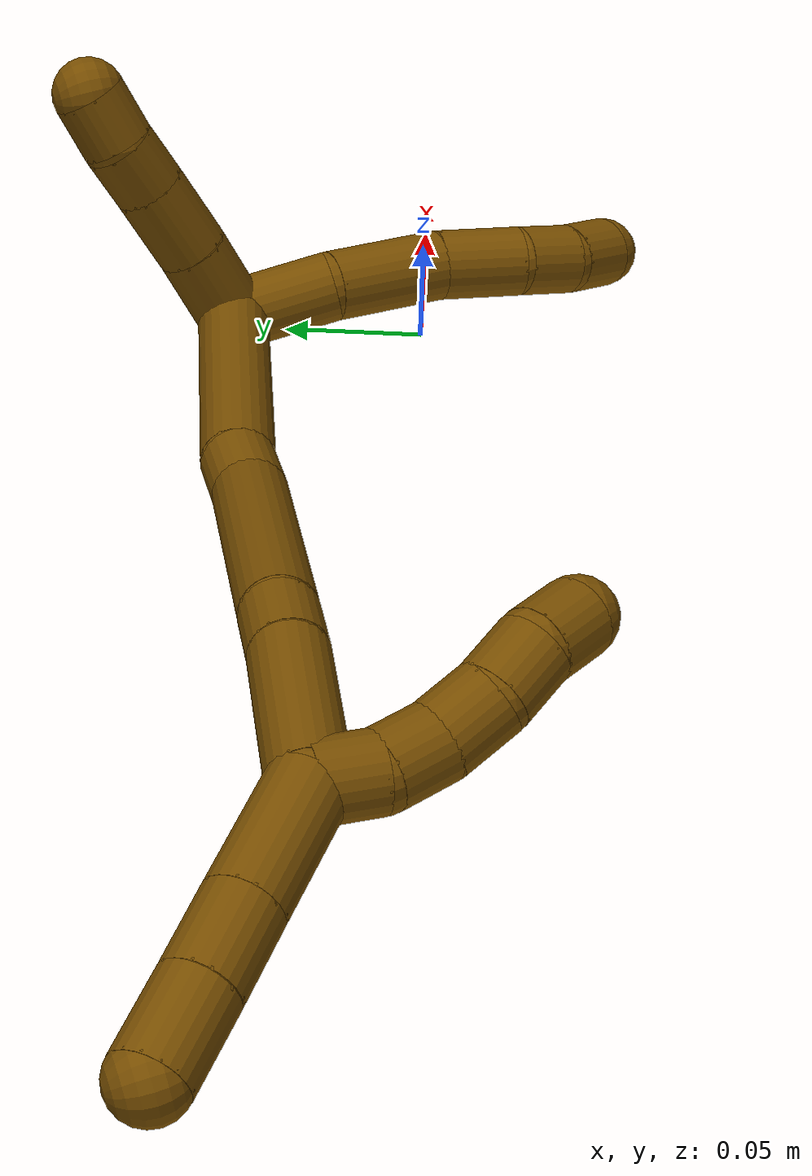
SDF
<sdf version="1.7">
 <world name="default">
  <model name="bin">
   <static>1</static>
   <link name="bottom">
    <collision name="collision-bottom">
     <pose>0 0 -0.01 0 -0 0</pose>
     <geometry><box><size>0.8 0.6 0.02</size></box></geometry>
     <surface>
      <friction><ode><mu>100</mu><mu2>100</mu2></ode></friction>
      <contact><collide_bitmask>65535</collide_bitmask></contact>
     </surface>
    </collision>
   </link>
   <link name="west_wall">
    <collision name="collision-west_wall">
     <pose>-0.41 0 0.1 0 -0 0</pose>
     <geometry><box><size>0.02 0.6 0.2</size></box></geometry>
     <surface>
      <friction><ode><mu>100</mu><mu2>100</mu2></ode></friction>
      <contact><collide_bitmask>65535</collide_bitmask></contact>
     </surface>
    </collision>
   </link>
   <link name="east_wall">
    <collision name="collision-east_wall">
     <pose>0.41 0 0.1 0 -0 0</pose>
     <geometry><box><size>0.02 0.6 0.2</size></box></geometry>
     <surface>
      <friction><ode><mu>100</mu><mu2>100</mu2></ode></friction>
      <contact><collide_bitmask>65535</collide_bitmask></contact>
     </surface>
    </collision>
   </link>
   <link name="south_wall">
    <collision name="collision-south_wall">
     <pose>0 -0.31 0.1 0 -0 0</pose>
     <geometry><box><size>0.8 0.02 0.2</size></box></geometry>
     <surface>
      <friction><ode><mu>100</mu><mu2>100</mu2></ode></friction>
      <contact><collide_bitmask>65535</collide_bitmask></contact>
     </surface>
    </collision>
   </link>
   <link name="north_wall">
    <collision name="collision-north_wall">
     <pose>0 0.31 0.1 0 -0 0</pose>
     <geometry><box><size>0.8 0.02 0.2</size></box></geometry>
     <surface>
      <friction><ode><mu>100</mu><mu2>100</mu2></ode></friction>
      <contact><collide_bitmask>65535</collide_bitmask></contact>
     </surface>
    </collision>
   </link>
  </model>
  <model name="12">
   <static>0</static>
   <link name="12">
    <collision name="collision-cylinder-e_1_2_8">
     <pose>-0.000188 0.0013 0.018205 -0.071304 -0.010299 0.000367</pose>
     <geometry><cylinder><radius>0.0125</radius><length>0.036505</length></cylinder></geometry>
     <surface>
      <friction><ode><mu>1.16</mu><mu2>1.16</mu2><slip1>0</slip1><slip2>0</slip2></ode></friction>
      <contact><ode><kp>1e+06</kp><kd>1</kd><max_vel>0</max_vel><min_depth>0.001</min_depth></ode></contact>
     </surface>
    </collision>
    <visual name="visual-cylinder-e_1_2_8">
     <pose>-0.000188 0.0013 0.018205 -0.071304 -0.010299 0.000367</pose>
     <geometry><cylinder><radius>0.0125</radius><length>0.036505</length></cylinder></geometry>
     <material><ambient>0.466667 0.301961 0 1</ambient></material>
    </visual>
    <collision name="collision-cylinder-e_2_8_9">
     <pose>0.000896 -0.001633 0.056796 0.204749 0.061038 0.006273</pose>
     <geometry><cylinder><radius>0.0125</radius><length>0.041717</length></cylinder></geometry>
     <surface>
      <friction><ode><mu>1.16</mu><mu2>1.16</mu2><slip1>0</slip1><slip2>0</slip2></ode></friction>
      <contact><ode><kp>1e+06</kp><kd>1</kd><max_vel>0</max_vel><min_depth>0.001</min_depth></ode></contact>
     </surface>
    </collision>
    <visual name="visual-cylinder-e_2_8_9">
     <pose>0.000896 -0.001633 0.056796 0.204749 0.061038 0.006273</pose>
     <geometry><cylinder><radius>0.0125</radius><length>0.041717</length></cylinder></geometry>
     <material><ambient>0.466667 0.301961 0 1</ambient></material>
    </visual>
    <collision name="collision-cylinder-e_3_9_10">
     <pose>0.000523 -0.008888 0.092075 0.200222 -0.107843 -0.010843</pose>
     <geometry><cylinder><radius>0.0125</radius><length>0.030573</length></cylinder></geometry>
     <surface>
      <friction><ode><mu>1.16</mu><mu2>1.16</mu2><slip1>0</slip1><slip2>0</slip2></ode></friction>
      <contact><ode><kp>1e+06</kp><kd>1</kd><max_vel>0</max_vel><min_depth>0.001</min_depth></ode></contact>
     </surface>
    </collision>
    <visual name="visual-cylinder-e_3_9_10">
     <pose>0.000523 -0.008888 0.092075 0.200222 -0.107843 -0.010843</pose>
     <geometry><cylinder><radius>0.0125</radius><length>0.030573</length></cylinder></geometry>
     <material><ambient>0.466667 0.301961 0 1</ambient></material>
    </visual>
    <collision name="collision-cylinder-e_4_10_11">
     <pose>-0.000813 -0.015973 0.116692 0.395769 0.029319 0.005879</pose>
     <geometry><cylinder><radius>0.0125</radius><length>0.021083</length></cylinder></geometry>
     <surface>
      <friction><ode><mu>1.16</mu><mu2>1.16</mu2><slip1>0</slip1><slip2>0</slip2></ode></friction>
      <contact><ode><kp>1e+06</kp><kd>1</kd><max_vel>0</max_vel><min_depth>0.001</min_depth></ode></contact>
     </surface>
    </collision>
    <visual name="visual-cylinder-e_4_10_11">
     <pose>-0.000813 -0.015973 0.116692 0.395769 0.029319 0.005879</pose>
     <geometry><cylinder><radius>0.0125</radius><length>0.021083</length></cylinder></geometry>
     <material><ambient>0.466667 0.301961 0 1</ambient></material>
    </visual>
    <collision name="collision-cylinder-e_5_11_6">
     <pose>0.002112 -0.025043 0.134738 0.541586 0.263082 0.073426</pose>
     <geometry><cylinder><radius>0.0125</radius><length>0.020121</length></cylinder></geometry>
     <surface>
      <friction><ode><mu>1.16</mu><mu2>1.16</mu2><slip1>0</slip1><slip2>0</slip2></ode></friction>
      <contact><ode><kp>1e+06</kp><kd>1</kd><max_vel>0</max_vel><min_depth>0.001</min_depth></ode></contact>
     </surface>
    </collision>
    <visual name="visual-cylinder-e_5_11_6">
     <pose>0.002112 -0.025043 0.134738 0.541586 0.263082 0.073426</pose>
     <geometry><cylinder><radius>0.0125</radius><length>0.020121</length></cylinder></geometry>
     <material><ambient>0.466667 0.301961 0 1</ambient></material>
    </visual>
    <collision name="collision-cylinder-e_1_2_12">
     <pose>0.007332 0.012897 -0.005015 -1.94165 0.48722 -0.696986</pose>
     <geometry><cylinder><radius>0.0125</radius><length>0.031321</length></cylinder></geometry>
     <surface>
      <friction><ode><mu>1.16</mu><mu2>1.16</mu2><slip1>0</slip1><slip2>0</slip2></ode></friction>
      <contact><ode><kp>1e+06</kp><kd>1</kd><max_vel>0</max_vel><min_depth>0.001</min_depth></ode></contact>
     </surface>
    </collision>
    <visual name="visual-cylinder-e_1_2_12">
     <pose>0.007332 0.012897 -0.005015 -1.94165 0.48722 -0.696986</pose>
     <geometry><cylinder><radius>0.0125</radius><length>0.031321</length></cylinder></geometry>
     <material><ambient>0.466667 0.301961 0 1</ambient></material>
    </visual>
    <collision name="collision-cylinder-e_2_12_13">
     <pose>0.021591 0.037226 -0.015202 -1.99566 0.504475 -0.760106</pose>
     <geometry><cylinder><radius>0.0125</radius><length>0.028663</length></cylinder></geometry>
     <surface>
      <friction><ode><mu>1.16</mu><mu2>1.16</mu2><slip1>0</slip1><slip2>0</slip2></ode></friction>
      <contact><ode><kp>1e+06</kp><kd>1</kd><max_vel>0</max_vel><min_depth>0.001</min_depth></ode></contact>
     </surface>
    </collision>
    <visual name="visual-cylinder-e_2_12_13">
     <pose>0.021591 0.037226 -0.015202 -1.99566 0.504475 -0.760106</pose>
     <geometry><cylinder><radius>0.0125</radius><length>0.028663</length></cylinder></geometry>
     <material><ambient>0.466667 0.301961 0 1</ambient></material>
    </visual>
    <collision name="collision-cylinder-e_3_13_14">
     <pose>0.033062 0.056753 -0.024107 -2.00292 0.471312 -0.717828</pose>
     <geometry><cylinder><radius>0.0125</radius><length>0.020015</length></cylinder></geometry>
     <surface>
      <friction><ode><mu>1.16</mu><mu2>1.16</mu2><slip1>0</slip1><slip2>0</slip2></ode></friction>
      <contact><ode><kp>1e+06</kp><kd>1</kd><max_vel>0</max_vel><min_depth>0.001</min_depth></ode></contact>
     </surface>
    </collision>
    <visual name="visual-cylinder-e_3_13_14">
     <pose>0.033062 0.056753 -0.024107 -2.00292 0.471312 -0.717828</pose>
     <geometry><cylinder><radius>0.0125</radius><length>0.020015</length></cylinder></geometry>
     <material><ambient>0.466667 0.301961 0 1</ambient></material>
    </visual>
    <collision name="collision-cylinder-e_4_14_5">
     <pose>0.043691 0.07222 -0.030786 -1.95087 0.654131 -0.928655</pose>
     <geometry><cylinder><radius>0.0125</radius><length>0.020001</length></cylinder></geometry>
     <surface>
      <friction><ode><mu>1.16</mu><mu2>1.16</mu2><slip1>0</slip1><slip2>0</slip2></ode></friction>
      <contact><ode><kp>1e+06</kp><kd>1</kd><max_vel>0</max_vel><min_depth>0.001</min_depth></ode></contact>
     </surface>
    </collision>
    <visual name="visual-cylinder-e_4_14_5">
     <pose>0.043691 0.07222 -0.030786 -1.95087 0.654131 -0.928655</pose>
     <geometry><cylinder><radius>0.0125</radius><length>0.020001</length></cylinder></geometry>
     <material><ambient>0.466667 0.301961 0 1</ambient></material>
    </visual>
    <collision name="collision-cylinder-e_1_2_15">
     <pose>-0.043094 0.024241 -0.011492 -2.01348 -1.01398 1.441</pose>
     <geometry><cylinder><radius>0.0125</radius><length>0.101524</length></cylinder></geometry>
     <surface>
      <friction><ode><mu>1.16</mu><mu2>1.16</mu2><slip1>0</slip1><slip2>0</slip2></ode></friction>
      <contact><ode><kp>1e+06</kp><kd>1</kd><max_vel>0</max_vel><min_depth>0.001</min_depth></ode></contact>
     </surface>
    </collision>
    <visual name="visual-cylinder-e_1_2_15">
     <pose>-0.043094 0.024241 -0.011492 -2.01348 -1.01398 1.441</pose>
     <geometry><cylinder><radius>0.0125</radius><length>0.101524</length></cylinder></geometry>
     <material><ambient>0.466667 0.301961 0 1</ambient></material>
    </visual>
    <collision name="collision-cylinder-e_2_15_16">
     <pose>-0.09543 0.053321 -0.023623 -1.70221 -1.08499 1.20492</pose>
     <geometry><cylinder><radius>0.0125</radius><length>0.020903</length></cylinder></geometry>
     <surface>
      <friction><ode><mu>1.16</mu><mu2>1.16</mu2><slip1>0</slip1><slip2>0</slip2></ode></friction>
      <contact><ode><kp>1e+06</kp><kd>1</kd><max_vel>0</max_vel><min_depth>0.001</min_depth></ode></contact>
     </surface>
    </collision>
    <visual name="visual-cylinder-e_2_15_16">
     <pose>-0.09543 0.053321 -0.023623 -1.70221 -1.08499 1.20492</pose>
     <geometry><cylinder><radius>0.0125</radius><length>0.020903</length></cylinder></geometry>
     <material><ambient>0.466667 0.301961 0 1</ambient></material>
    </visual>
    <collision name="collision-cylinder-e_3_16_17">
     <pose>-0.141912 0.087329 -0.030515 -1.78195 -0.895374 1.07206</pose>
     <geometry><cylinder><radius>0.0125</radius><length>0.095432</length></cylinder></geometry>
     <surface>
      <friction><ode><mu>1.16</mu><mu2>1.16</mu2><slip1>0</slip1><slip2>0</slip2></ode></friction>
      <contact><ode><kp>1e+06</kp><kd>1</kd><max_vel>0</max_vel><min_depth>0.001</min_depth></ode></contact>
     </surface>
    </collision>
    <visual name="visual-cylinder-e_3_16_17">
     <pose>-0.141912 0.087329 -0.030515 -1.78195 -0.895374 1.07206</pose>
     <geometry><cylinder><radius>0.0125</radius><length>0.095432</length></cylinder></geometry>
     <material><ambient>0.466667 0.301961 0 1</ambient></material>
    </visual>
    <collision name="collision-cylinder-e_4_17_18">
     <pose>-0.188891 0.122158 -0.038209 -1.82021 -1.03075 1.2596</pose>
     <geometry><cylinder><radius>0.0125</radius><length>0.02271</length></cylinder></geometry>
     <surface>
      <friction><ode><mu>1.16</mu><mu2>1.16</mu2><slip1>0</slip1><slip2>0</slip2></ode></friction>
      <contact><ode><kp>1e+06</kp><kd>1</kd><max_vel>0</max_vel><min_depth>0.001</min_depth></ode></contact>
     </surface>
    </collision>
    <visual name="visual-cylinder-e_4_17_18">
     <pose>-0.188891 0.122158 -0.038209 -1.82021 -1.03075 1.2596</pose>
     <geometry><cylinder><radius>0.0125</radius><length>0.02271</length></cylinder></geometry>
     <material><ambient>0.466667 0.301961 0 1</ambient></material>
    </visual>
    <collision name="collision-cylinder-e_5_18_1">
     <pose>-0.22478 0.140996 -0.044694 -1.93626 -1.07592 1.42876</pose>
     <geometry><cylinder><radius>0.0125</radius><length>0.059431</length></cylinder></geometry>
     <surface>
      <friction><ode><mu>1.16</mu><mu2>1.16</mu2><slip1>0</slip1><slip2>0</slip2></ode></friction>
      <contact><ode><kp>1e+06</kp><kd>1</kd><max_vel>0</max_vel><min_depth>0.001</min_depth></ode></contact>
     </surface>
    </collision>
    <visual name="visual-cylinder-e_5_18_1">
     <pose>-0.22478 0.140996 -0.044694 -1.93626 -1.07592 1.42876</pose>
     <geometry><cylinder><radius>0.0125</radius><length>0.059431</length></cylinder></geometry>
     <material><ambient>0.466667 0.301961 0 1</ambient></material>
    </visual>
    <collision name="collision-cylinder-e_1_1_19">
     <pose>-0.25141 0.152408 -0.039907 0.178018 -0.047997 -0.004284</pose>
     <geometry><cylinder><radius>0.0125</radius><length>0.02</length></cylinder></geometry>
     <surface>
      <friction><ode><mu>1.16</mu><mu2>1.16</mu2><slip1>0</slip1><slip2>0</slip2></ode></friction>
      <contact><ode><kp>1e+06</kp><kd>1</kd><max_vel>0</max_vel><min_depth>0.001</min_depth></ode></contact>
     </surface>
    </collision>
    <visual name="visual-cylinder-e_1_1_19">
     <pose>-0.25141 0.152408 -0.039907 0.178018 -0.047997 -0.004284</pose>
     <geometry><cylinder><radius>0.0125</radius><length>0.02</length></cylinder></geometry>
     <material><ambient>0.466667 0.301961 0 1</ambient></material>
    </visual>
    <collision name="collision-cylinder-e_2_19_20">
     <pose>-0.24902 0.148653 -0.020705 0.208807 0.291084 0.030716</pose>
     <geometry><cylinder><radius>0.0125</radius><length>0.02</length></cylinder></geometry>
     <surface>
      <friction><ode><mu>1.16</mu><mu2>1.16</mu2><slip1>0</slip1><slip2>0</slip2></ode></friction>
      <contact><ode><kp>1e+06</kp><kd>1</kd><max_vel>0</max_vel><min_depth>0.001</min_depth></ode></contact>
     </surface>
    </collision>
    <visual name="visual-cylinder-e_2_19_20">
     <pose>-0.24902 0.148653 -0.020705 0.208807 0.291084 0.030716</pose>
     <geometry><cylinder><radius>0.0125</radius><length>0.02</length></cylinder></geometry>
     <material><ambient>0.466667 0.301961 0 1</ambient></material>
    </visual>
    <collision name="collision-cylinder-e_3_20_21">
     <pose>-0.242466 0.147762 -0.002102 -0.118007 0.377332 -0.022557</pose>
     <geometry><cylinder><radius>0.0125</radius><length>0.02</length></cylinder></geometry>
     <surface>
      <friction><ode><mu>1.16</mu><mu2>1.16</mu2><slip1>0</slip1><slip2>0</slip2></ode></friction>
      <contact><ode><kp>1e+06</kp><kd>1</kd><max_vel>0</max_vel><min_depth>0.001</min_depth></ode></contact>
     </surface>
    </collision>
    <visual name="visual-cylinder-e_3_20_21">
     <pose>-0.242466 0.147762 -0.002102 -0.118007 0.377332 -0.022557</pose>
     <geometry><cylinder><radius>0.0125</radius><length>0.02</length></cylinder></geometry>
     <material><ambient>0.466667 0.301961 0 1</ambient></material>
    </visual>
    <collision name="collision-cylinder-e_4_21_22">
     <pose>-0.233159 0.148415 0.015387 0.05343 0.597146 0.016448</pose>
     <geometry><cylinder><radius>0.0125</radius><length>0.02</length></cylinder></geometry>
     <surface>
      <friction><ode><mu>1.16</mu><mu2>1.16</mu2><slip1>0</slip1><slip2>0</slip2></ode></friction>
      <contact><ode><kp>1e+06</kp><kd>1</kd><max_vel>0</max_vel><min_depth>0.001</min_depth></ode></contact>
     </surface>
    </collision>
    <visual name="visual-cylinder-e_4_21_22">
     <pose>-0.233159 0.148415 0.015387 0.05343 0.597146 0.016448</pose>
     <geometry><cylinder><radius>0.0125</radius><length>0.02</length></cylinder></geometry>
     <material><ambient>0.466667 0.301961 0 1</ambient></material>
    </visual>
    <collision name="collision-cylinder-e_5_22_4">
     <pose>-0.223102 0.144359 0.031848 0.414993 0.459317 0.098356</pose>
     <geometry><cylinder><radius>0.0125</radius><length>0.02</length></cylinder></geometry>
     <surface>
      <friction><ode><mu>1.16</mu><mu2>1.16</mu2><slip1>0</slip1><slip2>0</slip2></ode></friction>
      <contact><ode><kp>1e+06</kp><kd>1</kd><max_vel>0</max_vel><min_depth>0.001</min_depth></ode></contact>
     </surface>
    </collision>
    <visual name="visual-cylinder-e_5_22_4">
     <pose>-0.223102 0.144359 0.031848 0.414993 0.459317 0.098356</pose>
     <geometry><cylinder><radius>0.0125</radius><length>0.02</length></cylinder></geometry>
     <material><ambient>0.466667 0.301961 0 1</ambient></material>
    </visual>
    <collision name="collision-cylinder-e_1_1_23">
     <pose>-0.266813 0.157996 -0.063899 -2.87811 -0.825147 2.55365</pose>
     <geometry><cylinder><radius>0.0125</radius><length>0.043238</length></cylinder></geometry>
     <surface>
      <friction><ode><mu>1.16</mu><mu2>1.16</mu2><slip1>0</slip1><slip2>0</slip2></ode></friction>
      <contact><ode><kp>1e+06</kp><kd>1</kd><max_vel>0</max_vel><min_depth>0.001</min_depth></ode></contact>
     </surface>
    </collision>
    <visual name="visual-cylinder-e_1_1_23">
     <pose>-0.266813 0.157996 -0.063899 -2.87811 -0.825147 2.55365</pose>
     <geometry><cylinder><radius>0.0125</radius><length>0.043238</length></cylinder></geometry>
     <material><ambient>0.466667 0.301961 0 1</ambient></material>
    </visual>
    <collision name="collision-cylinder-e_2_23_24">
     <pose>-0.29289 0.16415 -0.08704 -2.88738 -0.832445 2.57875</pose>
     <geometry><cylinder><radius>0.0125</radius><length>0.027571</length></cylinder></geometry>
     <surface>
      <friction><ode><mu>1.16</mu><mu2>1.16</mu2><slip1>0</slip1><slip2>0</slip2></ode></friction>
      <contact><ode><kp>1e+06</kp><kd>1</kd><max_vel>0</max_vel><min_depth>0.001</min_depth></ode></contact>
     </surface>
    </collision>
    <visual name="visual-cylinder-e_2_23_24">
     <pose>-0.29289 0.16415 -0.08704 -2.88738 -0.832445 2.57875</pose>
     <geometry><cylinder><radius>0.0125</radius><length>0.027571</length></cylinder></geometry>
     <material><ambient>0.466667 0.301961 0 1</ambient></material>
    </visual>
    <collision name="collision-cylinder-e_3_24_3">
     <pose>-0.313745 0.168681 -0.105746 -2.9193 -0.81877 2.63807</pose>
     <geometry><cylinder><radius>0.0125</radius><length>0.029192</length></cylinder></geometry>
     <surface>
      <friction><ode><mu>1.16</mu><mu2>1.16</mu2><slip1>0</slip1><slip2>0</slip2></ode></friction>
      <contact><ode><kp>1e+06</kp><kd>1</kd><max_vel>0</max_vel><min_depth>0.001</min_depth></ode></contact>
     </surface>
    </collision>
    <visual name="visual-cylinder-e_3_24_3">
     <pose>-0.313745 0.168681 -0.105746 -2.9193 -0.81877 2.63807</pose>
     <geometry><cylinder><radius>0.0125</radius><length>0.029192</length></cylinder></geometry>
     <material><ambient>0.466667 0.301961 0 1</ambient></material>
    </visual>
    <collision name="collision-sphere-3">
     <pose>-0.324404 0.17088 -0.115471 0 -0 0</pose>
     <geometry><sphere><radius>0.0125</radius></sphere></geometry>
     <surface>
      <friction><ode><mu>1.16</mu><mu2>1.16</mu2><slip1>0</slip1><slip2>0</slip2></ode></friction>
      <contact><ode><kp>1e+06</kp><kd>1</kd><max_vel>0</max_vel><min_depth>0.001</min_depth></ode></contact>
     </surface>
    </collision>
    <visual name="visual-sphere-3">
     <pose>-0.324404 0.17088 -0.115471 0 -0 0</pose>
     <geometry><sphere><radius>0.0125</radius></sphere></geometry>
     <material><ambient>0.466667 0.301961 0 1</ambient></material>
    </visual>
    <collision name="collision-sphere-24">
     <pose>-0.303086 0.166483 -0.09602 0 -0 0</pose>
     <geometry><sphere><radius>0.0125</radius></sphere></geometry>
     <surface>
      <friction><ode><mu>1.16</mu><mu2>1.16</mu2><slip1>0</slip1><slip2>0</slip2></ode></friction>
      <contact><ode><kp>1e+06</kp><kd>1</kd><max_vel>0</max_vel><min_depth>0.001</min_depth></ode></contact>
     </surface>
    </collision>
    <visual name="visual-sphere-24">
     <pose>-0.303086 0.166483 -0.09602 0 -0 0</pose>
     <geometry><sphere><radius>0.0125</radius></sphere></geometry>
     <material><ambient>0.466667 0.301961 0 1</ambient></material>
    </visual>
    <collision name="collision-sphere-23">
     <pose>-0.282695 0.161816 -0.07806 0 -0 0</pose>
     <geometry><sphere><radius>0.0125</radius></sphere></geometry>
     <surface>
      <friction><ode><mu>1.16</mu><mu2>1.16</mu2><slip1>0</slip1><slip2>0</slip2></ode></friction>
      <contact><ode><kp>1e+06</kp><kd>1</kd><max_vel>0</max_vel><min_depth>0.001</min_depth></ode></contact>
     </surface>
    </collision>
    <visual name="visual-sphere-23">
     <pose>-0.282695 0.161816 -0.07806 0 -0 0</pose>
     <geometry><sphere><radius>0.0125</radius></sphere></geometry>
     <material><ambient>0.466667 0.301961 0 1</ambient></material>
    </visual>
    <collision name="collision-sphere-4">
     <pose>-0.218669 0.140745 0.04005 0 -0 0</pose>
     <geometry><sphere><radius>0.0125</radius></sphere></geometry>
     <surface>
      <friction><ode><mu>1.16</mu><mu2>1.16</mu2><slip1>0</slip1><slip2>0</slip2></ode></friction>
      <contact><ode><kp>1e+06</kp><kd>1</kd><max_vel>0</max_vel><min_depth>0.001</min_depth></ode></contact>
     </surface>
    </collision>
    <visual name="visual-sphere-4">
     <pose>-0.218669 0.140745 0.04005 0 -0 0</pose>
     <geometry><sphere><radius>0.0125</radius></sphere></geometry>
     <material><ambient>0.466667 0.301961 0 1</ambient></material>
    </visual>
    <collision name="collision-sphere-22">
     <pose>-0.227536 0.147973 0.023645 0 -0 0</pose>
     <geometry><sphere><radius>0.0125</radius></sphere></geometry>
     <surface>
      <friction><ode><mu>1.16</mu><mu2>1.16</mu2><slip1>0</slip1><slip2>0</slip2></ode></friction>
      <contact><ode><kp>1e+06</kp><kd>1</kd><max_vel>0</max_vel><min_depth>0.001</min_depth></ode></contact>
     </surface>
    </collision>
    <visual name="visual-sphere-22">
     <pose>-0.227536 0.147973 0.023645 0 -0 0</pose>
     <geometry><sphere><radius>0.0125</radius></sphere></geometry>
     <material><ambient>0.466667 0.301961 0 1</ambient></material>
    </visual>
    <collision name="collision-sphere-21">
     <pose>-0.238781 0.148856 0.00713 0 -0 0</pose>
     <geometry><sphere><radius>0.0125</radius></sphere></geometry>
     <surface>
      <friction><ode><mu>1.16</mu><mu2>1.16</mu2><slip1>0</slip1><slip2>0</slip2></ode></friction>
      <contact><ode><kp>1e+06</kp><kd>1</kd><max_vel>0</max_vel><min_depth>0.001</min_depth></ode></contact>
     </surface>
    </collision>
    <visual name="visual-sphere-21">
     <pose>-0.238781 0.148856 0.00713 0 -0 0</pose>
     <geometry><sphere><radius>0.0125</radius></sphere></geometry>
     <material><ambient>0.466667 0.301961 0 1</ambient></material>
    </visual>
    <collision name="collision-sphere-20">
     <pose>-0.24615 0.146667 -0.011334 0 -0 0</pose>
     <geometry><sphere><radius>0.0125</radius></sphere></geometry>
     <surface>
      <friction><ode><mu>1.16</mu><mu2>1.16</mu2><slip1>0</slip1><slip2>0</slip2></ode></friction>
      <contact><ode><kp>1e+06</kp><kd>1</kd><max_vel>0</max_vel><min_depth>0.001</min_depth></ode></contact>
     </surface>
    </collision>
    <visual name="visual-sphere-20">
     <pose>-0.24615 0.146667 -0.011334 0 -0 0</pose>
     <geometry><sphere><radius>0.0125</radius></sphere></geometry>
     <material><ambient>0.466667 0.301961 0 1</ambient></material>
    </visual>
    <collision name="collision-sphere-6">
     <pose>0.004729 -0.030051 0.143062 0 -0 0</pose>
     <geometry><sphere><radius>0.0125</radius></sphere></geometry>
     <surface>
      <friction><ode><mu>1.16</mu><mu2>1.16</mu2><slip1>0</slip1><slip2>0</slip2></ode></friction>
      <contact><ode><kp>1e+06</kp><kd>1</kd><max_vel>0</max_vel><min_depth>0.001</min_depth></ode></contact>
     </surface>
    </collision>
    <visual name="visual-sphere-6">
     <pose>0.004729 -0.030051 0.143062 0 -0 0</pose>
     <geometry><sphere><radius>0.0125</radius></sphere></geometry>
     <material><ambient>0.466667 0.301961 0 1</ambient></material>
    </visual>
    <collision name="collision-sphere-11">
     <pose>-0.000504 -0.020035 0.126414 0 -0 0</pose>
     <geometry><sphere><radius>0.0125</radius></sphere></geometry>
     <surface>
      <friction><ode><mu>1.16</mu><mu2>1.16</mu2><slip1>0</slip1><slip2>0</slip2></ode></friction>
      <contact><ode><kp>1e+06</kp><kd>1</kd><max_vel>0</max_vel><min_depth>0.001</min_depth></ode></contact>
     </surface>
    </collision>
    <visual name="visual-sphere-11">
     <pose>-0.000504 -0.020035 0.126414 0 -0 0</pose>
     <geometry><sphere><radius>0.0125</radius></sphere></geometry>
     <material><ambient>0.466667 0.301961 0 1</ambient></material>
    </visual>
    <collision name="collision-sphere-10">
     <pose>-0.001122 -0.011911 0.106969 0 -0 0</pose>
     <geometry><sphere><radius>0.0125</radius></sphere></geometry>
     <surface>
      <friction><ode><mu>1.16</mu><mu2>1.16</mu2><slip1>0</slip1><slip2>0</slip2></ode></friction>
      <contact><ode><kp>1e+06</kp><kd>1</kd><max_vel>0</max_vel><min_depth>0.001</min_depth></ode></contact>
     </surface>
    </collision>
    <visual name="visual-sphere-10">
     <pose>-0.001122 -0.011911 0.106969 0 -0 0</pose>
     <geometry><sphere><radius>0.0125</radius></sphere></geometry>
     <material><ambient>0.466667 0.301961 0 1</ambient></material>
    </visual>
    <collision name="collision-sphere-9">
     <pose>0.002169 -0.005866 0.077181 0 -0 0</pose>
     <geometry><sphere><radius>0.0125</radius></sphere></geometry>
     <surface>
      <friction><ode><mu>1.16</mu><mu2>1.16</mu2><slip1>0</slip1><slip2>0</slip2></ode></friction>
      <contact><ode><kp>1e+06</kp><kd>1</kd><max_vel>0</max_vel><min_depth>0.001</min_depth></ode></contact>
     </surface>
    </collision>
    <visual name="visual-sphere-9">
     <pose>0.002169 -0.005866 0.077181 0 -0 0</pose>
     <geometry><sphere><radius>0.0125</radius></sphere></geometry>
     <material><ambient>0.466667 0.301961 0 1</ambient></material>
    </visual>
    <collision name="collision-sphere-2">
     <geometry><sphere><radius>0.0125</radius></sphere></geometry>
     <surface>
      <friction><ode><mu>1.16</mu><mu2>1.16</mu2><slip1>0</slip1><slip2>0</slip2></ode></friction>
      <contact><ode><kp>1e+06</kp><kd>1</kd><max_vel>0</max_vel><min_depth>0.001</min_depth></ode></contact>
     </surface>
    </collision>
    <visual name="visual-sphere-2">
     <geometry><sphere><radius>0.0125</radius></sphere></geometry>
     <material><ambient>0.466667 0.301961 0 1</ambient></material>
    </visual>
    <collision name="collision-sphere-19">
     <pose>-0.25189 0.150639 -0.030076 0 -0 0</pose>
     <geometry><sphere><radius>0.0125</radius></sphere></geometry>
     <surface>
      <friction><ode><mu>1.16</mu><mu2>1.16</mu2><slip1>0</slip1><slip2>0</slip2></ode></friction>
      <contact><ode><kp>1e+06</kp><kd>1</kd><max_vel>0</max_vel><min_depth>0.001</min_depth></ode></contact>
     </surface>
    </collision>
    <visual name="visual-sphere-19">
     <pose>-0.25189 0.150639 -0.030076 0 -0 0</pose>
     <geometry><sphere><radius>0.0125</radius></sphere></geometry>
     <material><ambient>0.466667 0.301961 0 1</ambient></material>
    </visual>
    <collision name="collision-sphere-8">
     <pose>-0.000376 0.002601 0.036411 0 -0 0</pose>
     <geometry><sphere><radius>0.0125</radius></sphere></geometry>
     <surface>
      <friction><ode><mu>1.16</mu><mu2>1.16</mu2><slip1>0</slip1><slip2>0</slip2></ode></friction>
      <contact><ode><kp>1e+06</kp><kd>1</kd><max_vel>0</max_vel><min_depth>0.001</min_depth></ode></contact>
     </surface>
    </collision>
    <visual name="visual-sphere-8">
     <pose>-0.000376 0.002601 0.036411 0 -0 0</pose>
     <geometry><sphere><radius>0.0125</radius></sphere></geometry>
     <material><ambient>0.466667 0.301961 0 1</ambient></material>
    </visual>
    <collision name="collision-sphere-12">
     <pose>0.014664 0.025795 -0.01003 0 -0 0</pose>
     <geometry><sphere><radius>0.0125</radius></sphere></geometry>
     <surface>
      <friction><ode><mu>1.16</mu><mu2>1.16</mu2><slip1>0</slip1><slip2>0</slip2></ode></friction>
      <contact><ode><kp>1e+06</kp><kd>1</kd><max_vel>0</max_vel><min_depth>0.001</min_depth></ode></contact>
     </surface>
    </collision>
    <visual name="visual-sphere-12">
     <pose>0.014664 0.025795 -0.01003 0 -0 0</pose>
     <geometry><sphere><radius>0.0125</radius></sphere></geometry>
     <material><ambient>0.466667 0.301961 0 1</ambient></material>
    </visual>
    <collision name="collision-sphere-13">
     <pose>0.028518 0.048656 -0.020373 0 -0 0</pose>
     <geometry><sphere><radius>0.0125</radius></sphere></geometry>
     <surface>
      <friction><ode><mu>1.16</mu><mu2>1.16</mu2><slip1>0</slip1><slip2>0</slip2></ode></friction>
      <contact><ode><kp>1e+06</kp><kd>1</kd><max_vel>0</max_vel><min_depth>0.001</min_depth></ode></contact>
     </surface>
    </collision>
    <visual name="visual-sphere-13">
     <pose>0.028518 0.048656 -0.020373 0 -0 0</pose>
     <geometry><sphere><radius>0.0125</radius></sphere></geometry>
     <material><ambient>0.466667 0.301961 0 1</ambient></material>
    </visual>
    <collision name="collision-sphere-14">
     <pose>0.037606 0.06485 -0.027841 0 -0 0</pose>
     <geometry><sphere><radius>0.0125</radius></sphere></geometry>
     <surface>
      <friction><ode><mu>1.16</mu><mu2>1.16</mu2><slip1>0</slip1><slip2>0</slip2></ode></friction>
      <contact><ode><kp>1e+06</kp><kd>1</kd><max_vel>0</max_vel><min_depth>0.001</min_depth></ode></contact>
     </surface>
    </collision>
    <visual name="visual-sphere-14">
     <pose>0.037606 0.06485 -0.027841 0 -0 0</pose>
     <geometry><sphere><radius>0.0125</radius></sphere></geometry>
     <material><ambient>0.466667 0.301961 0 1</ambient></material>
    </visual>
    <collision name="collision-sphere-5">
     <pose>0.049776 0.07959 -0.03373 0 -0 0</pose>
     <geometry><sphere><radius>0.0125</radius></sphere></geometry>
     <surface>
      <friction><ode><mu>1.16</mu><mu2>1.16</mu2><slip1>0</slip1><slip2>0</slip2></ode></friction>
      <contact><ode><kp>1e+06</kp><kd>1</kd><max_vel>0</max_vel><min_depth>0.001</min_depth></ode></contact>
     </surface>
    </collision>
    <visual name="visual-sphere-5">
     <pose>0.049776 0.07959 -0.03373 0 -0 0</pose>
     <geometry><sphere><radius>0.0125</radius></sphere></geometry>
     <material><ambient>0.466667 0.301961 0 1</ambient></material>
    </visual>
    <collision name="collision-sphere-15">
     <pose>-0.086188 0.048483 -0.022984 0 -0 0</pose>
     <geometry><sphere><radius>0.0125</radius></sphere></geometry>
     <surface>
      <friction><ode><mu>1.16</mu><mu2>1.16</mu2><slip1>0</slip1><slip2>0</slip2></ode></friction>
      <contact><ode><kp>1e+06</kp><kd>1</kd><max_vel>0</max_vel><min_depth>0.001</min_depth></ode></contact>
     </surface>
    </collision>
    <visual name="visual-sphere-15">
     <pose>-0.086188 0.048483 -0.022984 0 -0 0</pose>
     <geometry><sphere><radius>0.0125</radius></sphere></geometry>
     <material><ambient>0.466667 0.301961 0 1</ambient></material>
    </visual>
    <collision name="collision-sphere-16">
     <pose>-0.104673 0.058159 -0.024263 0 -0 0</pose>
     <geometry><sphere><radius>0.0125</radius></sphere></geometry>
     <surface>
      <friction><ode><mu>1.16</mu><mu2>1.16</mu2><slip1>0</slip1><slip2>0</slip2></ode></friction>
      <contact><ode><kp>1e+06</kp><kd>1</kd><max_vel>0</max_vel><min_depth>0.001</min_depth></ode></contact>
     </surface>
    </collision>
    <visual name="visual-sphere-16">
     <pose>-0.104673 0.058159 -0.024263 0 -0 0</pose>
     <geometry><sphere><radius>0.0125</radius></sphere></geometry>
     <material><ambient>0.466667 0.301961 0 1</ambient></material>
    </visual>
    <collision name="collision-sphere-17">
     <pose>-0.179152 0.1165 -0.036768 0 -0 0</pose>
     <geometry><sphere><radius>0.0125</radius></sphere></geometry>
     <surface>
      <friction><ode><mu>1.16</mu><mu2>1.16</mu2><slip1>0</slip1><slip2>0</slip2></ode></friction>
      <contact><ode><kp>1e+06</kp><kd>1</kd><max_vel>0</max_vel><min_depth>0.001</min_depth></ode></contact>
     </surface>
    </collision>
    <visual name="visual-sphere-17">
     <pose>-0.179152 0.1165 -0.036768 0 -0 0</pose>
     <geometry><sphere><radius>0.0125</radius></sphere></geometry>
     <material><ambient>0.466667 0.301961 0 1</ambient></material>
    </visual>
    <collision name="collision-sphere-18">
     <pose>-0.19863 0.127816 -0.039651 0 -0 0</pose>
     <geometry><sphere><radius>0.0125</radius></sphere></geometry>
     <surface>
      <friction><ode><mu>1.16</mu><mu2>1.16</mu2><slip1>0</slip1><slip2>0</slip2></ode></friction>
      <contact><ode><kp>1e+06</kp><kd>1</kd><max_vel>0</max_vel><min_depth>0.001</min_depth></ode></contact>
     </surface>
    </collision>
    <visual name="visual-sphere-18">
     <pose>-0.19863 0.127816 -0.039651 0 -0 0</pose>
     <geometry><sphere><radius>0.0125</radius></sphere></geometry>
     <material><ambient>0.466667 0.301961 0 1</ambient></material>
    </visual>
    <collision name="collision-sphere-1">
     <pose>-0.25093 0.154176 -0.049738 0 -0 0</pose>
     <geometry><sphere><radius>0.0125</radius></sphere></geometry>
     <surface>
      <friction><ode><mu>1.16</mu><mu2>1.16</mu2><slip1>0</slip1><slip2>0</slip2></ode></friction>
      <contact><ode><kp>1e+06</kp><kd>1</kd><max_vel>0</max_vel><min_depth>0.001</min_depth></ode></contact>
     </surface>
    </collision>
    <visual name="visual-sphere-1">
     <pose>-0.25093 0.154176 -0.049738 0 -0 0</pose>
     <geometry><sphere><radius>0.0125</radius></sphere></geometry>
     <material><ambient>0.466667 0.301961 0 1</ambient></material>
    </visual>
    <inertial>
     <pose>-0.117145 0.076126 -0.009769 0 -0 0</pose>
     <mass>0.75</mass>
     <inertia><ixx>0.000137</ixx><ixy>0</ixy><ixz>0</ixz><iyy>0.000282</iyy><iyz>0</iyz><izz>6e-05</izz></inertia>
    </inertial>
   </link>
   <pose>-0.025069 0.066305 0.036843 1.53994 -0.112906 0.36449</pose>
  </model>
 </world>
</sdf>
